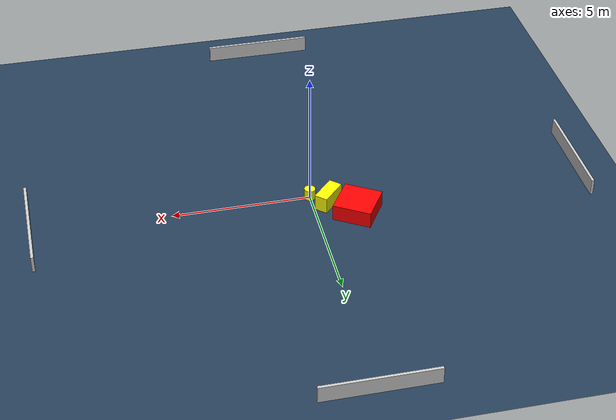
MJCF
<?xml version="1.0" ?>
<mujoco model="generated_environment">
  <option timestep="0.01" integrator="RK4" cone="elliptic"/>
  <default>
    <geom density="1"/>
  </default>
  <asset>
    <texture builtin="gradient" height="3072" name="skybox" rgb1="0.3 0.5 0.7" rgb2="0 0 0" type="skybox" width="512"/>
    <texture builtin="checker" height="300" name="groundplane" rgb1="0.2 0.3 0.4" rgb2="0.1 0.2 0.3" type="2d" width="300"/>
    <material name="groundplane" reflectance="0.2" texrepeat="5 5" texture="groundplane"/>
  </asset>
  <worldbody>
    <light dir="0 0 -1" directional="true" pos="0 0 1.5"/>
    <geom condim="3" friction="0.5 0.005 0.001" material="groundplane" name="floor" pos="0 0 0" size="0 0 0.05" type="plane"/>
    <body name="walls">
      <geom name="wall_1" condim="4" pos="-10.0 0.0 0.3" rgba="0.800000011920929 0.800000011920929 0.800000011920929 1.0" size="0.05 2.0 0.3" type="box"/>
      <geom name="wall_2" condim="4" pos="10.0 0.0 0.3" rgba="0.800000011920929 0.800000011920929 0.800000011920929 1.0" size="0.05 2.0 0.3" type="box"/>
      <geom name="wall_3" condim="4" pos="0.0 -10.0 0.3" rgba="0.800000011920929 0.800000011920929 0.800000011920929 1.0" size="2.0 0.05 0.3" type="box"/>
      <geom name="wall_4" condim="4" pos="0.0 10.0 0.3" rgba="0.800000011920929 0.800000011920929 0.800000011920929 1.0" size="2.0 0.05 0.3" type="box"/>
    </body>
    <body name="robot">
      <joint name="joint_x" type="slide" pos="0 0 0" axis="1 0 0"/>
      <joint name="joint_y" type="slide" pos="0 0 0" axis="0 1 0"/>
      <geom name="robot" type="cylinder" pos="0.0 0.0 0.2" size="0.2 0.2 0.0" mass="5.0" friction="1.0 0.005 0.0001" condim="4" rgba="1.0 1.0 0.0 1.0"/>
    </body>
    <body name="obstacle_1_movable">
      <geom name="obstacle_1_movable" condim="4" pos="-0.5690890068514944 0.47039260387509896 0.3" euler="0 0 317.33795332948375" friction="0.0 0.005 0.001" rgba="1.0 1.0 0.0 1.0" size="0.24288606991695877 0.5335028561284161 0.3" type="box" mass="0.1"/>
      <joint type="free"/>
    </body>
    <body name="obstacle_2_static">
      <geom name="obstacle_2_static" condim="4" pos="-1.4694490507408124 1.2024388498599994 0.3" euler="0 0 237.9745852103976" friction="0.0 0.005 0.001" rgba="1.0 0.0 0.0 1.0" size="0.6888629151932653 0.6991811534148772 0.3" type="box"/>
    </body>
  </worldbody>
  <actuator>
    <motor name="actuator_x" joint="joint_x" gear="1" ctrlrange="-1 1"/>
    <motor name="actuator_y" joint="joint_y" gear="1" ctrlrange="-1 1"/>
  </actuator>
</mujoco>
